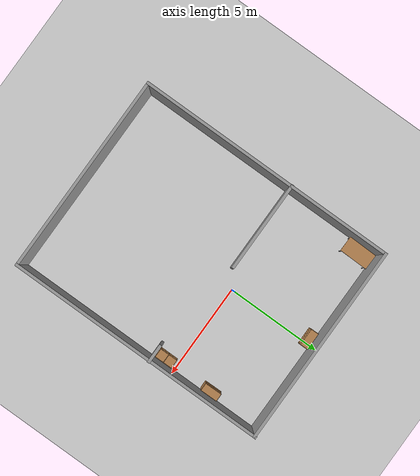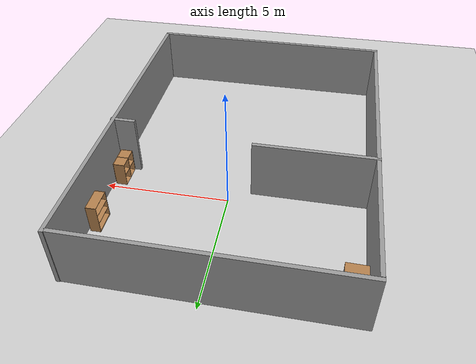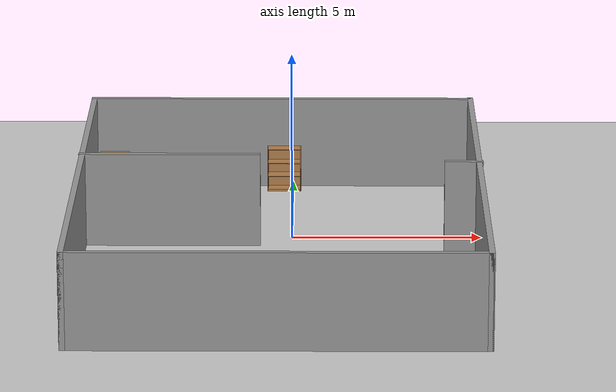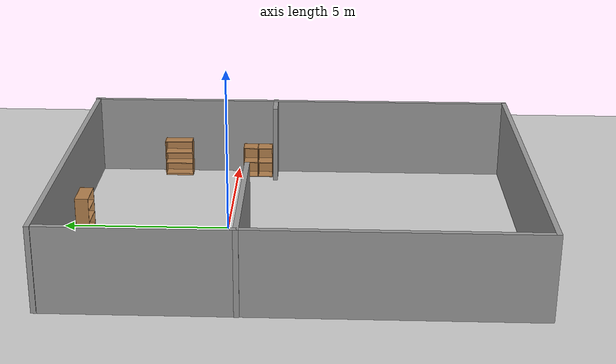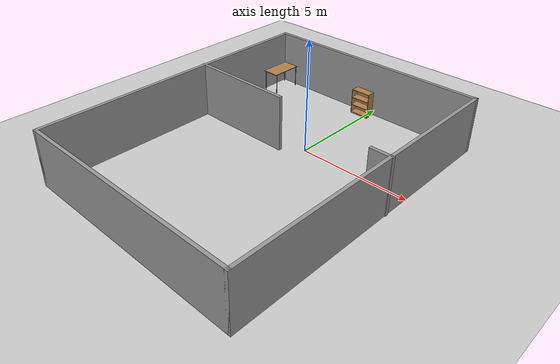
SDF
<sdf version="1.6">
 <world name="default">
  <light name="sun" type="directional">
   <pose>0 0 10 0 -0 0</pose>
   <diffuse>0.8 0.8 0.8 1</diffuse>
   <specular>0.2 0.2 0.2 1</specular>
   <attenuation>
    <range>1000</range>
    <constant>0.9</constant>
    <linear>0.01</linear>
    <quadratic>0.001</quadratic>
   </attenuation>
   <direction>-0.5 0.1 -0.9</direction>
  </light>
  <model name="ground_plane">
   <static>1</static>
   <link name="link">
    <collision name="collision">
     <geometry><plane><normal>0 0 1</normal><size>100 100</size></plane></geometry>
     <surface>
      <contact><collide_bitmask>65535</collide_bitmask></contact>
      <friction><ode><mu>100</mu><mu2>50</mu2></ode></friction>
     </surface>
    </collision>
    <visual name="visual">
     <cast_shadows>0</cast_shadows>
     <geometry><plane><normal>0 0 1</normal><size>100 100</size></plane></geometry>
     <material>
      <script><uri>file://media/materials/scripts/gazebo.material</uri><name>Gazebo/Grey</name></script>
     </material>
    </visual>
   </link>
  </model>
  <gravity>0 0 -9.8</gravity>
  <magnetic_field>6e-06 2.3e-05 -4.2e-05</magnetic_field>
  <atmosphere type="adiabatic"/>
  <physics name="default_physics" default="0" type="ode">
   <max_step_size>0.001</max_step_size>
   <real_time_factor>1</real_time_factor>
   <real_time_update_rate>1000</real_time_update_rate>
  </physics>
  <scene><ambient>0.4 0.4 0.4 1</ambient><background>0.7 0.7 0.7 1</background><shadows>1</shadows></scene>
  <spherical_coordinates>
   <surface_model>EARTH_WGS84</surface_model>
   <latitude_deg>0</latitude_deg>
   <longitude_deg>0</longitude_deg>
   <elevation>0</elevation>
   <heading_deg>0</heading_deg>
  </spherical_coordinates>
  <model name="Model_S">
   <pose>-0.30092 -2.04639 0 0 -0 0</pose>
   <link name="Wall_11">
    <collision name="Wall_11_Collision">
     <geometry><box><size>4.75 0.15 2.5</size></box></geometry>
     <pose>0 0 1.25 0 -0 0</pose>
    </collision>
    <visual name="Wall_11_Visual">
     <pose>0 0 1.25 0 -0 0</pose>
     <geometry><box><size>4.75 0.15 2.5</size></box></geometry>
     <material>
      <script><uri>file://media/materials/scripts/gazebo.material</uri><name>Gazebo/Grey</name></script>
      <ambient>1 1 1 1</ambient>
     </material>
     <meta><layer>0</layer></meta>
    </visual>
    <pose>-2.90034 1.39737 0 0 -0 0</pose>
   </link>
   <link name="Wall_13">
    <collision name="Wall_13_Collision">
     <geometry><box><size>1 0.15 2.5</size></box></geometry>
     <pose>0 0 1.25 0 -0 0</pose>
    </collision>
    <visual name="Wall_13_Visual">
     <pose>0 0 1.25 0 -0 0</pose>
     <geometry><box><size>1 0.15 2.5</size></box></geometry>
     <material>
      <script><uri>file://media/materials/scripts/gazebo.material</uri><name>Gazebo/Grey</name></script>
      <ambient>1 1 1 1</ambient>
     </material>
     <meta><layer>0</layer></meta>
    </visual>
    <pose>4.77534 0.785568 0 0 -0 3.14159</pose>
   </link>
   <link name="Wall_3">
    <collision name="Wall_3_Collision">
     <geometry><box><size>13.5 0.15 2.5</size></box></geometry>
     <pose>0 0 1.25 0 -0 0</pose>
    </collision>
    <visual name="Wall_3_Visual">
     <pose>0 0 1.25 0 -0 0</pose>
     <geometry><box><size>13.5 0.15 2.5</size></box></geometry>
     <material>
      <script><uri>file://media/materials/scripts/gazebo.material</uri><name>Gazebo/Grey</name></script>
      <ambient>1 1 1 1</ambient>
     </material>
     <meta><layer>0</layer></meta>
    </visual>
    <pose>-5.18211 -0.093101 0 0 0 -1.5708</pose>
   </link>
   <link name="Wall_4">
    <collision name="Wall_4_Collision">
     <geometry><box><size>10.5 0.15 2.5</size></box></geometry>
     <pose>0 0 1.25 0 -0 0</pose>
    </collision>
    <visual name="Wall_4_Visual">
     <pose>0 0 1.25 0 -0 0</pose>
     <geometry><box><size>10.5 0.15 2.5</size></box></geometry>
     <material>
      <script><uri>file://media/materials/scripts/gazebo.material</uri><name>Gazebo/Grey</name></script>
      <ambient>1 1 1 1</ambient>
     </material>
     <meta><layer>0</layer></meta>
    </visual>
    <pose>-0.007106 -6.7681 0 0 -0 0</pose>
   </link>
   <link name="Wall_5">
    <collision name="Wall_5_Collision">
     <geometry><box><size>13.6862 0.15 2.5</size></box></geometry>
     <pose>0 0 1.25 0 -0 0</pose>
    </collision>
    <visual name="Wall_5_Visual">
     <pose>0 0 1.25 0 -0 0</pose>
     <geometry><box><size>13.6862 0.15 2.5</size></box></geometry>
     <material>
      <script><uri>file://media/materials/scripts/gazebo.material</uri><name>Gazebo/Grey</name></script>
      <ambient>1 1 1 1</ambient>
     </material>
     <meta><layer>0</layer></meta>
    </visual>
    <pose>5.16789 0 0 0 -0 1.5708</pose>
   </link>
   <link name="Wall_6">
    <collision name="Wall_6_Collision">
     <geometry><box><size>10.5 0.15 2.5</size></box></geometry>
     <pose>0 0 1.25 0 -0 0</pose>
    </collision>
    <visual name="Wall_6_Visual">
     <pose>0 0 1.25 0 -0 0</pose>
     <geometry><box><size>10.5 0.15 2.5</size></box></geometry>
     <material>
      <script><uri>file://media/materials/scripts/gazebo.material</uri><name>Gazebo/Grey</name></script>
      <ambient>1 1 1 1</ambient>
     </material>
     <meta><layer>0</layer></meta>
    </visual>
    <pose>-0.007106 6.7415 0 0 -0 3.14159</pose>
   </link>
   <static>1</static>
  </model>
  <model name="bookshelf">
   <static>1</static>
   <link name="link">
    <inertial><mass>1</mass></inertial>
    <collision name="back">
     <pose>0 0.005 0.6 0 -0 0</pose>
     <geometry><box><size>0.9 0.01 1.2</size></box></geometry>
    </collision>
    <visual name="visual1">
     <pose>0 0.005 0.6 0 -0 0</pose>
     <geometry><box><size>0.9 0.01 1.2</size></box></geometry>
     <material>
      <script><uri>file://media/materials/scripts/gazebo.material</uri><name>Gazebo/Wood</name></script>
     </material>
    </visual>
    <collision name="left_side">
     <pose>0.45 -0.195 0.6 0 -0 0</pose>
     <geometry><box><size>0.02 0.4 1.2</size></box></geometry>
    </collision>
    <visual name="visual2">
     <pose>0.45 -0.195 0.6 0 -0 0</pose>
     <geometry><box><size>0.02 0.4 1.2</size></box></geometry>
     <material>
      <script><uri>file://media/materials/scripts/gazebo.material</uri><name>Gazebo/Wood</name></script>
     </material>
    </visual>
    <collision name="right_side">
     <pose>-0.45 -0.195 0.6 0 -0 0</pose>
     <geometry><box><size>0.02 0.4 1.2</size></box></geometry>
    </collision>
    <visual name="visual3">
     <pose>-0.45 -0.195 0.6 0 -0 0</pose>
     <geometry><box><size>0.02 0.4 1.2</size></box></geometry>
     <material>
      <script><uri>file://media/materials/scripts/gazebo.material</uri><name>Gazebo/Wood</name></script>
     </material>
    </visual>
    <collision name="bottom">
     <pose>0 -0.195 0.03 0 -0 0</pose>
     <geometry><box><size>0.88 0.4 0.06</size></box></geometry>
    </collision>
    <visual name="visual4">
     <pose>0 -0.195 0.03 0 -0 0</pose>
     <geometry><box><size>0.88 0.4 0.06</size></box></geometry>
     <material>
      <script><uri>file://media/materials/scripts/gazebo.material</uri><name>Gazebo/Wood</name></script>
     </material>
    </visual>
    <collision name="top">
     <pose>0 -0.195 1.19 0 -0 0</pose>
     <geometry><box><size>0.88 0.4 0.02</size></box></geometry>
    </collision>
    <visual name="visual5">
     <pose>0 -0.195 1.19 0 -0 0</pose>
     <geometry><box><size>0.88 0.4 0.02</size></box></geometry>
     <material>
      <script><uri>file://media/materials/scripts/gazebo.material</uri><name>Gazebo/Wood</name></script>
     </material>
    </visual>
    <collision name="low_shelf">
     <pose>0 -0.195 0.43 0 -0 0</pose>
     <geometry><box><size>0.88 0.4 0.02</size></box></geometry>
    </collision>
    <visual name="visual6">
     <pose>0 -0.195 0.43 0 -0 0</pose>
     <geometry><box><size>0.88 0.4 0.02</size></box></geometry>
     <material>
      <script><uri>file://media/materials/scripts/gazebo.material</uri><name>Gazebo/Wood</name></script>
     </material>
    </visual>
    <collision name="high_shelf">
     <pose>0 -0.195 0.8 0 -0 0</pose>
     <geometry><box><size>0.88 0.4 0.02</size></box></geometry>
    </collision>
    <visual name="visual7">
     <pose>0 -0.195 0.8 0 -0 0</pose>
     <geometry><box><size>0.88 0.4 0.02</size></box></geometry>
     <material>
      <script><uri>file://media/materials/scripts/gazebo.material</uri><name>Gazebo/Wood</name></script>
     </material>
    </visual>
   </link>
   <pose>4.70132 1.98606 0 0 0 -1.5632</pose>
  </model>
  <model name="table">
   <static>1</static>
   <link name="link">
    <collision name="surface">
     <pose>0 0 1 0 -0 0</pose>
     <geometry><box><size>1.5 0.8 0.03</size></box></geometry>
     <surface><friction><ode><mu>0.6</mu><mu2>0.6</mu2></ode></friction></surface>
    </collision>
    <visual name="visual1">
     <pose>0 0 1 0 -0 0</pose>
     <geometry><box><size>1.5 0.8 0.03</size></box></geometry>
     <material>
      <script><uri>file://media/materials/scripts/gazebo.material</uri><name>Gazebo/Wood</name></script>
     </material>
    </visual>
    <collision name="front_left_leg">
     <pose>0.68 0.38 0.5 0 -0 0</pose>
     <geometry><cylinder><radius>0.02</radius><length>1</length></cylinder></geometry>
    </collision>
    <visual name="front_left_leg">
     <pose>0.68 0.38 0.5 0 -0 0</pose>
     <geometry><cylinder><radius>0.02</radius><length>1</length></cylinder></geometry>
     <material>
      <script><uri>file://media/materials/scripts/gazebo.material</uri><name>Gazebo/Grey</name></script>
     </material>
    </visual>
    <collision name="front_right_leg">
     <pose>0.68 -0.38 0.5 0 -0 0</pose>
     <geometry><cylinder><radius>0.02</radius><length>1</length></cylinder></geometry>
    </collision>
    <visual name="front_right_leg">
     <pose>0.68 -0.38 0.5 0 -0 0</pose>
     <geometry><cylinder><radius>0.02</radius><length>1</length></cylinder></geometry>
     <material>
      <script><uri>file://media/materials/scripts/gazebo.material</uri><name>Gazebo/Grey</name></script>
     </material>
    </visual>
    <collision name="back_right_leg">
     <pose>-0.68 -0.38 0.5 0 -0 0</pose>
     <geometry><cylinder><radius>0.02</radius><length>1</length></cylinder></geometry>
    </collision>
    <visual name="back_right_leg">
     <pose>-0.68 -0.38 0.5 0 -0 0</pose>
     <geometry><cylinder><radius>0.02</radius><length>1</length></cylinder></geometry>
     <material>
      <script><uri>file://media/materials/scripts/gazebo.material</uri><name>Gazebo/Grey</name></script>
     </material>
    </visual>
    <collision name="back_left_leg">
     <pose>-0.68 0.38 0.5 0 -0 0</pose>
     <geometry><cylinder><radius>0.02</radius><length>1</length></cylinder></geometry>
    </collision>
    <visual name="back_left_leg">
     <pose>-0.68 0.38 0.5 0 -0 0</pose>
     <geometry><cylinder><radius>0.02</radius><length>1</length></cylinder></geometry>
     <material>
      <script><uri>file://media/materials/scripts/gazebo.material</uri><name>Gazebo/Grey</name></script>
     </material>
    </visual>
   </link>
   <pose>-4.94445 3.80377 0 0 0 -1.58832</pose>
  </model>
  <model name="bookshelf_0">
   <static>1</static>
   <link name="link">
    <inertial><mass>1</mass></inertial>
    <collision name="back">
     <pose>0 0.005 0.6 0 -0 0</pose>
     <geometry><box><size>0.9 0.01 1.2</size></box></geometry>
    </collision>
    <visual name="visual1">
     <pose>0 0.005 0.6 0 -0 0</pose>
     <geometry><box><size>0.9 0.01 1.2</size></box></geometry>
     <material>
      <script><uri>file://media/materials/scripts/gazebo.material</uri><name>Gazebo/Wood</name></script>
     </material>
    </visual>
    <collision name="left_side">
     <pose>0.45 -0.195 0.6 0 -0 0</pose>
     <geometry><box><size>0.02 0.4 1.2</size></box></geometry>
    </collision>
    <visual name="visual2">
     <pose>0.45 -0.195 0.6 0 -0 0</pose>
     <geometry><box><size>0.02 0.4 1.2</size></box></geometry>
     <material>
      <script><uri>file://media/materials/scripts/gazebo.material</uri><name>Gazebo/Wood</name></script>
     </material>
    </visual>
    <collision name="right_side">
     <pose>-0.45 -0.195 0.6 0 -0 0</pose>
     <geometry><box><size>0.02 0.4 1.2</size></box></geometry>
    </collision>
    <visual name="visual3">
     <pose>-0.45 -0.195 0.6 0 -0 0</pose>
     <geometry><box><size>0.02 0.4 1.2</size></box></geometry>
     <material>
      <script><uri>file://media/materials/scripts/gazebo.material</uri><name>Gazebo/Wood</name></script>
     </material>
    </visual>
    <collision name="bottom">
     <pose>0 -0.195 0.03 0 -0 0</pose>
     <geometry><box><size>0.88 0.4 0.06</size></box></geometry>
    </collision>
    <visual name="visual4">
     <pose>0 -0.195 0.03 0 -0 0</pose>
     <geometry><box><size>0.88 0.4 0.06</size></box></geometry>
     <material>
      <script><uri>file://media/materials/scripts/gazebo.material</uri><name>Gazebo/Wood</name></script>
     </material>
    </visual>
    <collision name="top">
     <pose>0 -0.195 1.19 0 -0 0</pose>
     <geometry><box><size>0.88 0.4 0.02</size></box></geometry>
    </collision>
    <visual name="visual5">
     <pose>0 -0.195 1.19 0 -0 0</pose>
     <geometry><box><size>0.88 0.4 0.02</size></box></geometry>
     <material>
      <script><uri>file://media/materials/scripts/gazebo.material</uri><name>Gazebo/Wood</name></script>
     </material>
    </visual>
    <collision name="low_shelf">
     <pose>0 -0.195 0.43 0 -0 0</pose>
     <geometry><box><size>0.88 0.4 0.02</size></box></geometry>
    </collision>
    <visual name="visual6">
     <pose>0 -0.195 0.43 0 -0 0</pose>
     <geometry><box><size>0.88 0.4 0.02</size></box></geometry>
     <material>
      <script><uri>file://media/materials/scripts/gazebo.material</uri><name>Gazebo/Wood</name></script>
     </material>
    </visual>
    <collision name="high_shelf">
     <pose>0 -0.195 0.8 0 -0 0</pose>
     <geometry><box><size>0.88 0.4 0.02</size></box></geometry>
    </collision>
    <visual name="visual7">
     <pose>0 -0.195 0.8 0 -0 0</pose>
     <geometry><box><size>0.88 0.4 0.02</size></box></geometry>
     <material>
      <script><uri>file://media/materials/scripts/gazebo.material</uri><name>Gazebo/Wood</name></script>
     </material>
    </visual>
   </link>
   <pose>-0.254108 4.50034 0 0 -0 0</pose>
  </model>
  <model name="cabinet">
   <static>1</static>
   <link name="cabinet_bottom_plate">
    <inertial>
     <pose>0 0 -1 0 -0 0</pose>
     <inertia><ixx>2.05</ixx><ixy>0</ixy><ixz>0</ixz><iyy>2.05</iyy><iyz>0</iyz><izz>2.05</izz></inertia>
     <mass>25</mass>
    </inertial>
    <collision name="cabinet_bottom_plate_geom">
     <pose>0 0 0.01 0 -0 0</pose>
     <geometry><box><size>0.45 0.45 0.02</size></box></geometry>
    </collision>
    <visual name="cabinet_bottom_plate_geom_visual">
     <pose>0 0 0.01 0 -0 0</pose>
     <geometry><box><size>0.45 0.45 0.02</size></box></geometry>
     <material>
      <script><uri>file://media/materials/scripts/gazebo.material</uri><name>Gazebo/Wood</name></script>
     </material>
    </visual>
    <collision name="cabinet_bottom_plate_geom_cabinet_back_plate">
     <pose>0.235 0 0.51 0 -0 0</pose>
     <geometry><box><size>0.02 0.45 1.02</size></box></geometry>
    </collision>
    <visual name="cabinet_bottom_plate_geom_cabinet_back_plate_visual">
     <pose>0.235 0 0.51 0 -0 0</pose>
     <geometry><box><size>0.02 0.45 1.02</size></box></geometry>
     <material>
      <script><uri>file://media/materials/scripts/gazebo.material</uri><name>Gazebo/Wood</name></script>
     </material>
    </visual>
    <collision name="cabinet_bottom_plate_geom_cabinet_left_plate">
     <pose>0 0.235 0.51 0 -0 0</pose>
     <geometry><box><size>0.45 0.02 1.02</size></box></geometry>
    </collision>
    <visual name="cabinet_bottom_plate_geom_cabinet_left_plate_visual">
     <pose>0 0.235 0.51 0 -0 0</pose>
     <geometry><box><size>0.45 0.02 1.02</size></box></geometry>
     <material>
      <script><uri>file://media/materials/scripts/gazebo.material</uri><name>Gazebo/Wood</name></script>
     </material>
    </visual>
    <collision name="cabinet_bottom_plate_geom_cabinet_middle_plate">
     <pose>0 0 0.51 0 -0 0</pose>
     <geometry><box><size>0.45 0.45 0.02</size></box></geometry>
    </collision>
    <visual name="cabinet_bottom_plate_geom_cabinet_middle_plate_visual">
     <pose>0 0 0.51 0 -0 0</pose>
     <geometry><box><size>0.45 0.45 0.02</size></box></geometry>
     <material>
      <script><uri>file://media/materials/scripts/gazebo.material</uri><name>Gazebo/Wood</name></script>
     </material>
    </visual>
    <collision name="cabinet_bottom_plate_geom_cabinet_right_plate">
     <pose>0 -0.235 0.51 0 -0 0</pose>
     <geometry><box><size>0.45 0.02 1.02</size></box></geometry>
    </collision>
    <visual name="cabinet_bottom_plate_geom_cabinet_right_plate_visual">
     <pose>0 -0.235 0.51 0 -0 0</pose>
     <geometry><box><size>0.45 0.02 1.02</size></box></geometry>
     <material>
      <script><uri>file://media/materials/scripts/gazebo.material</uri><name>Gazebo/Wood</name></script>
     </material>
    </visual>
    <collision name="cabinet_bottom_plate_geom_cabinet_top_plate">
     <pose>0 0 1.01 0 -0 0</pose>
     <geometry><box><size>0.45 0.45 0.02</size></box></geometry>
    </collision>
    <visual name="cabinet_bottom_plate_geom_cabinet_top_plate_visual">
     <pose>0 0 1.01 0 -0 0</pose>
     <geometry><box><size>0.45 0.45 0.02</size></box></geometry>
     <material>
      <script><uri>file://media/materials/scripts/gazebo.material</uri><name>Gazebo/Wood</name></script>
     </material>
    </visual>
   </link>
   <pose>4.4726 -0.911298 0 0 -0 0</pose>
  </model>
  <model name="cabinet_0">
   <static>1</static>
   <link name="cabinet_bottom_plate">
    <inertial>
     <pose>0 0 -1 0 -0 0</pose>
     <inertia><ixx>2.05</ixx><ixy>0</ixy><ixz>0</ixz><iyy>2.05</iyy><iyz>0</iyz><izz>2.05</izz></inertia>
     <mass>25</mass>
    </inertial>
    <collision name="cabinet_bottom_plate_geom">
     <pose>0 0 0.01 0 -0 0</pose>
     <geometry><box><size>0.45 0.45 0.02</size></box></geometry>
    </collision>
    <visual name="cabinet_bottom_plate_geom_visual">
     <pose>0 0 0.01 0 -0 0</pose>
     <geometry><box><size>0.45 0.45 0.02</size></box></geometry>
     <material>
      <script><uri>file://media/materials/scripts/gazebo.material</uri><name>Gazebo/Wood</name></script>
     </material>
    </visual>
    <collision name="cabinet_bottom_plate_geom_cabinet_back_plate">
     <pose>0.235 0 0.51 0 -0 0</pose>
     <geometry><box><size>0.02 0.45 1.02</size></box></geometry>
    </collision>
    <visual name="cabinet_bottom_plate_geom_cabinet_back_plate_visual">
     <pose>0.235 0 0.51 0 -0 0</pose>
     <geometry><box><size>0.02 0.45 1.02</size></box></geometry>
     <material>
      <script><uri>file://media/materials/scripts/gazebo.material</uri><name>Gazebo/Wood</name></script>
     </material>
    </visual>
    <collision name="cabinet_bottom_plate_geom_cabinet_left_plate">
     <pose>0 0.235 0.51 0 -0 0</pose>
     <geometry><box><size>0.45 0.02 1.02</size></box></geometry>
    </collision>
    <visual name="cabinet_bottom_plate_geom_cabinet_left_plate_visual">
     <pose>0 0.235 0.51 0 -0 0</pose>
     <geometry><box><size>0.45 0.02 1.02</size></box></geometry>
     <material>
      <script><uri>file://media/materials/scripts/gazebo.material</uri><name>Gazebo/Wood</name></script>
     </material>
    </visual>
    <collision name="cabinet_bottom_plate_geom_cabinet_middle_plate">
     <pose>0 0 0.51 0 -0 0</pose>
     <geometry><box><size>0.45 0.45 0.02</size></box></geometry>
    </collision>
    <visual name="cabinet_bottom_plate_geom_cabinet_middle_plate_visual">
     <pose>0 0 0.51 0 -0 0</pose>
     <geometry><box><size>0.45 0.45 0.02</size></box></geometry>
     <material>
      <script><uri>file://media/materials/scripts/gazebo.material</uri><name>Gazebo/Wood</name></script>
     </material>
    </visual>
    <collision name="cabinet_bottom_plate_geom_cabinet_right_plate">
     <pose>0 -0.235 0.51 0 -0 0</pose>
     <geometry><box><size>0.45 0.02 1.02</size></box></geometry>
    </collision>
    <visual name="cabinet_bottom_plate_geom_cabinet_right_plate_visual">
     <pose>0 -0.235 0.51 0 -0 0</pose>
     <geometry><box><size>0.45 0.02 1.02</size></box></geometry>
     <material>
      <script><uri>file://media/materials/scripts/gazebo.material</uri><name>Gazebo/Wood</name></script>
     </material>
    </visual>
    <collision name="cabinet_bottom_plate_geom_cabinet_top_plate">
     <pose>0 0 1.01 0 -0 0</pose>
     <geometry><box><size>0.45 0.45 0.02</size></box></geometry>
    </collision>
    <visual name="cabinet_bottom_plate_geom_cabinet_top_plate_visual">
     <pose>0 0 1.01 0 -0 0</pose>
     <geometry><box><size>0.45 0.45 0.02</size></box></geometry>
     <material>
      <script><uri>file://media/materials/scripts/gazebo.material</uri><name>Gazebo/Wood</name></script>
     </material>
    </visual>
   </link>
   <pose>4.47092 -0.432891 0 0 -0 0</pose>
  </model>
 </world>
</sdf>
